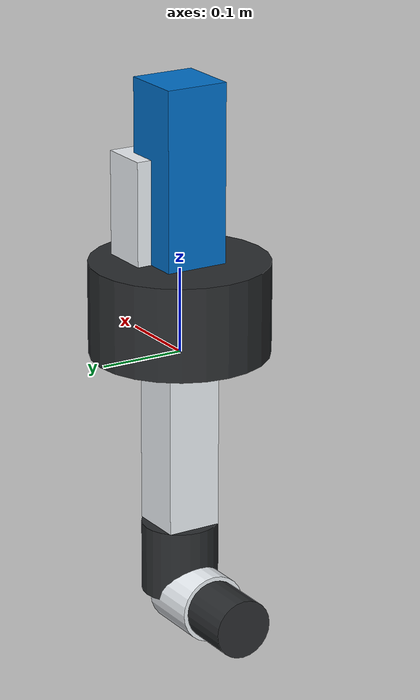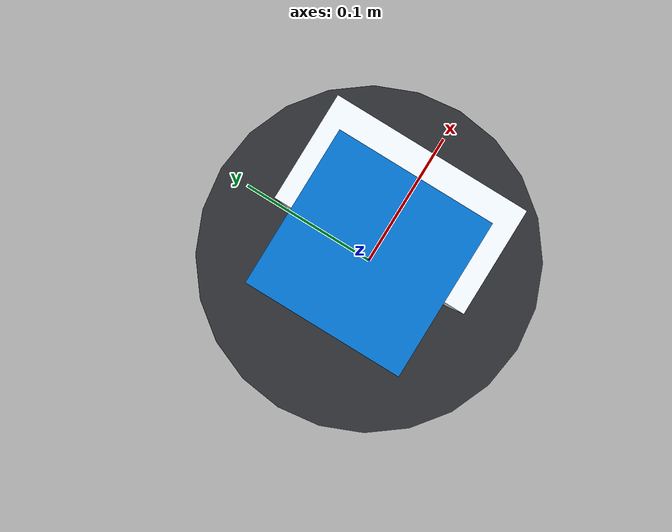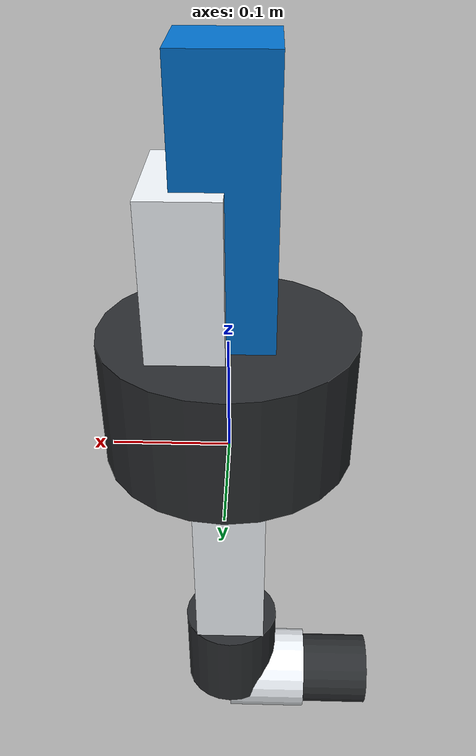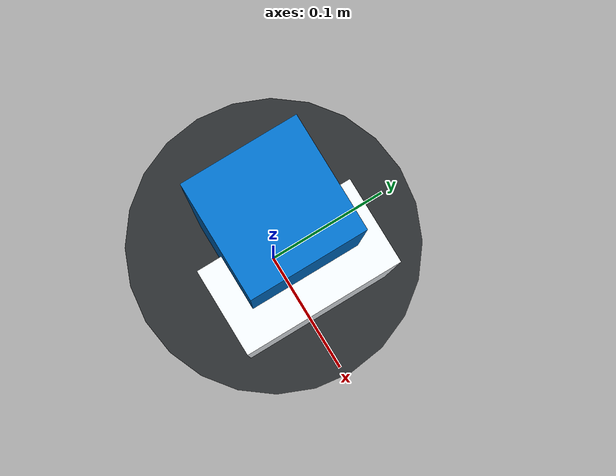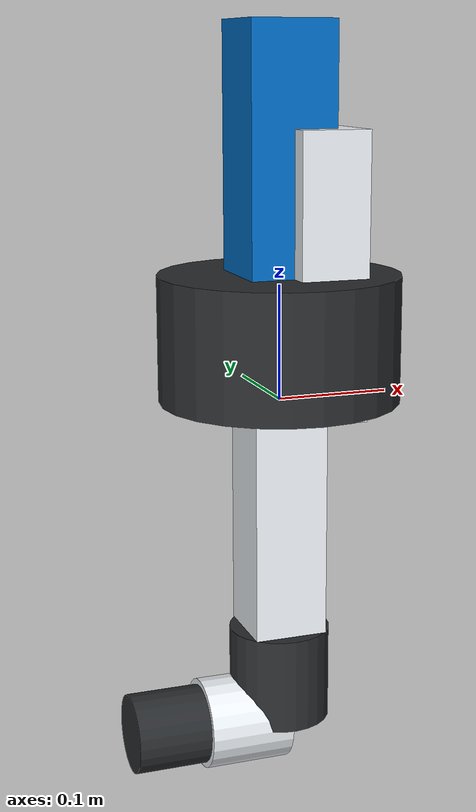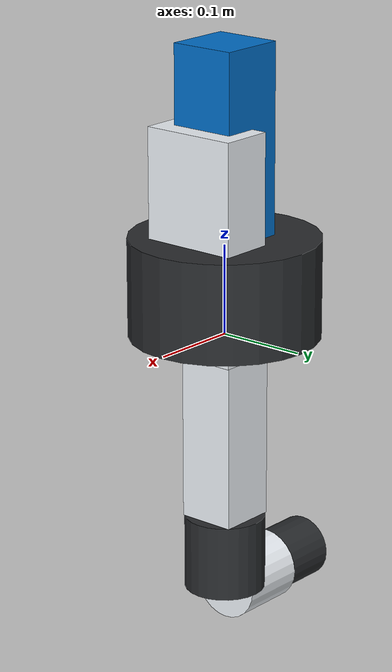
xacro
<?xml version="1.0"?>
<robot xmlns:xacro="http://www.ros.org/wiki/xacro" name="dobot_me6">
  <xacro:arg name="control_mode" default="fake"/>
  <xacro:property name="control_mode_value" value="$(arg control_mode)"/>

  <xacro:macro name="simple_inertial" params="mass ixx iyy izz">
    <inertial>
      <origin xyz="0 0 0" rpy="0 0 0"/>
      <mass value="${mass}"/>
      <inertia ixx="${ixx}" ixy="0" ixz="0" iyy="${iyy}" iyz="0" izz="${izz}"/>
    </inertial>
  </xacro:macro>

  <xacro:macro name="cylinder_link" params="name radius length mass color">
    <link name="${name}">
      <visual>
        <origin xyz="0 0 ${length / 2.0}" rpy="0 0 0"/>
        <geometry>
          <cylinder radius="${radius}" length="${length}"/>
        </geometry>
        <material name="${color}"/>
      </visual>
      <collision>
        <origin xyz="0 0 ${length / 2.0}" rpy="0 0 0"/>
        <geometry>
          <cylinder radius="${radius}" length="${length}"/>
        </geometry>
      </collision>
      <xacro:simple_inertial mass="${mass}" ixx="0.01" iyy="0.01" izz="0.01"/>
    </link>
  </xacro:macro>

  <xacro:macro name="box_link" params="name x y z mass color">
    <link name="${name}">
      <visual>
        <origin xyz="${x / 2.0} 0 0" rpy="0 0 0"/>
        <geometry>
          <box size="${x} ${y} ${z}"/>
        </geometry>
        <material name="${color}"/>
      </visual>
      <collision>
        <origin xyz="${x / 2.0} 0 0" rpy="0 0 0"/>
        <geometry>
          <box size="${x} ${y} ${z}"/>
        </geometry>
      </collision>
      <xacro:simple_inertial mass="${mass}" ixx="0.01" iyy="0.01" izz="0.01"/>
    </link>
  </xacro:macro>

  <material name="dobot_white">
    <color rgba="0.92 0.94 0.96 1.0"/>
  </material>
  <material name="dobot_blue">
    <color rgba="0.0 0.43 0.78 1.0"/>
  </material>
  <material name="dark_grey">
    <color rgba="0.16 0.17 0.18 1.0"/>
  </material>

  <link name="world"/>
  <xacro:cylinder_link name="base_link" radius="0.105" length="0.110" mass="2.0" color="dark_grey"/>
  <xacro:box_link name="shoulder_link" x="0.060" y="0.110" z="0.245" mass="1.5" color="dobot_white"/>
  <xacro:box_link name="upper_arm_link" x="0.280" y="0.075" z="0.075" mass="1.4" color="dobot_blue"/>
  <xacro:box_link name="forearm_link" x="0.250" y="0.065" z="0.065" mass="1.1" color="dobot_white"/>
  <xacro:cylinder_link name="wrist_1_link" radius="0.045" length="0.085" mass="0.5" color="dark_grey"/>
  <xacro:cylinder_link name="wrist_2_link" radius="0.040" length="0.075" mass="0.4" color="dobot_white"/>
  <xacro:cylinder_link name="wrist_3_link" radius="0.035" length="0.065" mass="0.3" color="dark_grey"/>
  <link name="tool0"/>

  <joint name="world_to_base" type="fixed">
    <parent link="world"/>
    <child link="base_link"/>
  </joint>

  <joint name="joint1" type="revolute">
    <parent link="base_link"/>
    <child link="shoulder_link"/>
    <origin xyz="0 0 0.110" rpy="0 0 0"/>
    <axis xyz="0 0 1"/>
    <limit lower="-3.1416" upper="3.1416" effort="80" velocity="1.2"/>
  </joint>

  <joint name="joint2" type="revolute">
    <parent link="shoulder_link"/>
    <child link="upper_arm_link"/>
    <origin xyz="0 0 0.210" rpy="0 1.5708 0"/>
    <axis xyz="0 1 0"/>
    <limit lower="-2.3562" upper="2.3562" effort="80" velocity="1.2"/>
  </joint>

  <joint name="joint3" type="revolute">
    <parent link="upper_arm_link"/>
    <child link="forearm_link"/>
    <origin xyz="0.280 0 0" rpy="0 0 0"/>
    <axis xyz="0 1 0"/>
    <limit lower="-2.7925" upper="2.7925" effort="60" velocity="1.5"/>
  </joint>

  <joint name="joint4" type="revolute">
    <parent link="forearm_link"/>
    <child link="wrist_1_link"/>
    <origin xyz="0.250 0 0" rpy="0 1.5708 0"/>
    <axis xyz="1 0 0"/>
    <limit lower="-3.1416" upper="3.1416" effort="30" velocity="2.0"/>
  </joint>

  <joint name="joint5" type="revolute">
    <parent link="wrist_1_link"/>
    <child link="wrist_2_link"/>
    <origin xyz="0 0 0.085" rpy="0 1.5708 0"/>
    <axis xyz="0 1 0"/>
    <limit lower="-2.3562" upper="2.3562" effort="30" velocity="2.0"/>
  </joint>

  <joint name="joint6" type="revolute">
    <parent link="wrist_2_link"/>
    <child link="wrist_3_link"/>
    <origin xyz="0 0 0.075" rpy="0 0 0"/>
    <axis xyz="1 0 0"/>
    <limit lower="-6.2832" upper="6.2832" effort="20" velocity="2.5"/>
  </joint>

  <joint name="tool0_fixed" type="fixed">
    <parent link="wrist_3_link"/>
    <child link="tool0"/>
    <origin xyz="0 0 0.070" rpy="0 0 0"/>
  </joint>

  <ros2_control name="DobotME6System" type="system">
    <xacro:if value="${control_mode_value == 'gazebo'}">
      <hardware>
        <plugin>gazebo_ros2_control/GazeboSystem</plugin>
      </hardware>
    </xacro:if>
    <xacro:if value="${control_mode_value != 'gazebo'}">
      <hardware>
        <plugin>fake_components/GenericSystem</plugin>
      </hardware>
    </xacro:if>
    <joint name="joint1">
      <command_interface name="position"/>
      <state_interface name="position"/>
      <state_interface name="velocity"/>
    </joint>
    <joint name="joint2">
      <command_interface name="position"/>
      <state_interface name="position"/>
      <state_interface name="velocity"/>
    </joint>
    <joint name="joint3">
      <command_interface name="position"/>
      <state_interface name="position"/>
      <state_interface name="velocity"/>
    </joint>
    <joint name="joint4">
      <command_interface name="position"/>
      <state_interface name="position"/>
      <state_interface name="velocity"/>
    </joint>
    <joint name="joint5">
      <command_interface name="position"/>
      <state_interface name="position"/>
      <state_interface name="velocity"/>
    </joint>
    <joint name="joint6">
      <command_interface name="position"/>
      <state_interface name="position"/>
      <state_interface name="velocity"/>
    </joint>
  </ros2_control>

  <xacro:if value="${control_mode_value == 'gazebo'}">
    <gazebo>
      <plugin filename="libgazebo_ros2_control.so" name="gazebo_ros2_control">
        <parameters>$(find dobot_me6_bringup)/config/ros2_controllers.yaml</parameters>
      </plugin>
    </gazebo>
  </xacro:if>
</robot>
